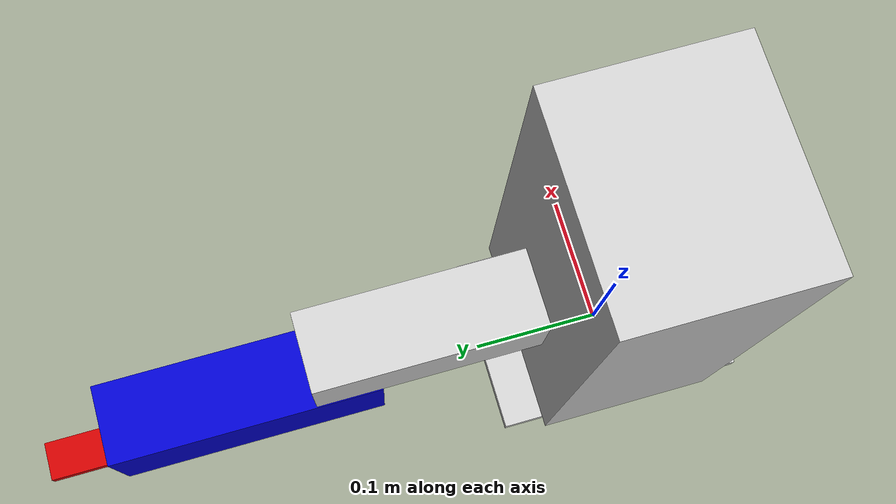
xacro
<?xml version="1.0"?>
<robot xmlns:xacro="http://www.ros.org/wiki/xacro" name="scara_52900">
  <xacro:property name="damping_value" value="1" />
  <xacro:property name="friction_value" value="1" />
  <xacro:property name="mass_upper_links" value=".2" />
  <material name="blue">
    <color rgba="0 0 .8 .9"/>
  </material>
  <material name="pvc">
    <color rgba=".8 .8 .8 1"/>
  </material>
  <material name="black">
    <color rgba="0 0 0 1"/>
  </material>
  <material name="aluminum">
    <color rgba=".144 .144 .144 .8"/>
  </material>
  <material name="white">
      <color rgba="1 1 1 1"/>
  </material>
  <material name="red">
      <color rgba="0.8 0 0 1"/>
  </material>
  <material name="green">
      <color rgba="0 1 0 1"/>
  </material>
  <material name="yellow">
      <color rgba="1 1 0 1"/>
  </material>

  <link name="base_link">
    <visual>
      <geometry>
        <box size=".139 .195 .009"/>
      </geometry>
      <material name="pvc"/>
    </visual>
    <collision>
      <geometry>
        <box size=".139 .195 .009"/>
      </geometry>
    </collision>
    <inertial>
    	<mass value="4" />
    <inertia ixx="0.4" ixy="0.0" ixz="0.0" iyy="0.4" iyz="0.0" izz="0.2"/>
  	</inertial>
  </link>

  <link name="scapula">
    <visual>
      <geometry>
        <box size=".155 .134 .320"/>
      </geometry>
      <origin rpy="0 0 0" xyz="0 0 .075"/>
      <material name="pvc"/>
    </visual>
    <collision>
      <geometry>
        <box size=".155 .134 .320"/>
      </geometry>
    </collision>
    <inertial>
    		<mass value="${mass_upper_links}" />
    <inertia ixx="0.4" ixy="0.0" ixz="0.0" iyy="0.4" iyz="0.0" izz="0.2"/>
  	</inertial>
  </link>

  <joint name="waist" type="revolute">
    <parent link="base_link"/>
    <child link="scapula"/>
    <axis xyz="0 0 1" />
    <origin xyz="0 0 .09"/>
    <limit lower="-3" upper="3" effort="30" velocity="1" />
    <visual>
      <material name="aluminum"/>
    </visual>
    <dynamics damping="${damping_value}" friction="${friction_value}" />
  </joint>

  <transmission name="waist_trans">
    <type>transmission_interface/SimpleTransmission</type>
    <actuator name="$waist_motor">
      <mechanicalReduction>20</mechanicalReduction>
    </actuator>
    <joint name="waist">
      <hardwareInterface>PositionJointInterface</hardwareInterface>
    </joint>
  </transmission>

  <link name="humerus">
    <visual>
      <geometry>
        <box size=".255 .059 .056"/>
      </geometry>
      <origin rpy="0 0 1.57057" xyz="0 .110 0"/>
      <material name="pvc"/>
    </visual>
    <collision>
      <geometry>
        <box size=".255 .059 .056"/>
      </geometry>
    </collision>
    <inertial>
    		<mass value="${mass_upper_links}" />
    <inertia ixx="0.4" ixy="0.0" ixz="0.0" iyy="0.4" iyz="0.0" izz="0.2"/>
  </inertial>
  </link>

  <joint name="shoulder" type="prismatic">
    <parent link="scapula"/>
    <child link="humerus"/>
    <axis xyz="0 0 1" />
    <origin xyz="0 0 .04" rpy="0 0 0" />
    <limit lower="0" upper=".155" effort="1" velocity="1"/>
    <dynamics damping="${damping_value}" friction="${friction_value}" />
  </joint>

  <transmission name="shoulder_trans">
    <type>transmission_interface/SimpleTransmission</type>
    <actuator name="$shoulder_motor">
      <mechanicalReduction>5</mechanicalReduction>
    </actuator>
    <joint name="shoulder">
      <hardwareInterface>PositionJointInterface</hardwareInterface>
    </joint>
  </transmission>

  <link name="forearm">
    <visual>
      <geometry>
        <box size=".205 .06 .072"/>
      </geometry>
      <origin xyz="0 .100 0" rpy="0 0 1.57057" />
      <material name="blue"/>
    </visual>
    <collision>
      <geometry>
        <box size=".205 .06 .072"/>
      </geometry>
    </collision>
    <inertial>
    		<mass value="${mass_upper_links}" />
    <inertia ixx="0.4" ixy="0.0" ixz="0.0" iyy="0.4" iyz="0.0" izz="0.2"/>
  </inertial>
  </link>

  <joint name="elbow" type="revolute">
    <parent link="humerus"/>
    <child link="forearm"/>
    <limit lower="-2.44" upper="2.44" effort="1" velocity="1"/>
    <origin xyz="0 .190 -.065" rpy="0 0 0" />
    <axis xyz="0 0 1" />
    <dynamics damping="${damping_value}" friction="${friction_value}" />
  </joint>

  <transmission name="elbow_trans">
    <type>transmission_interface/SimpleTransmission</type>
    <actuator name="$elbow_motor">
      <mechanicalReduction>12</mechanicalReduction>
    </actuator>
    <joint name="elbow">
      <hardwareInterface>PositionJointInterface</hardwareInterface>
    </joint>
  </transmission>

	<link name="hand">
    <visual>
      <geometry>
        <box size=".03  .129 .009"/>
      </geometry>
      <origin xyz="0 0 0 " rpy="1.57057 0 0"/>
      <material name="red"/>
    </visual>
    <collision>
      <geometry>
        <box size=".03  .129 .009"/>
      </geometry>
    </collision>
    <inertial>
    		<mass value="${mass_upper_links}" />
    <inertia ixx="0.4" ixy="0.0" ixz="0.0" iyy="0.4" iyz="0.0" izz="0.2"/>
	</inertial>
	</link>

  <joint name="wrist" type="continuous">
    <parent link="forearm"/>
    <child link="hand"/>
    <origin xyz="0 .1993 -.05" rpy="1.57057 0  0 " />
    <axis xyz="0 1 0" />
    <dynamics damping="${damping_value}" friction="${friction_value}" />
  </joint>

  <transmission name="wrist_trans">
    <type>transmission_interface/SimpleTransmission</type>
    <actuator name="$wrist_motor">
      <mechanicalReduction>4</mechanicalReduction>
    </actuator>
    <joint name="wrist">
      <hardwareInterface>PositionJointInterface</hardwareInterface>
    </joint>
  </transmission>

  <gazebo>
    <plugin name="gazebo_ros_control" filename="libgazebo_ros_control.so">
      <robotNamespace>/</robotNamespace>
    </plugin>
  </gazebo>
</robot>
